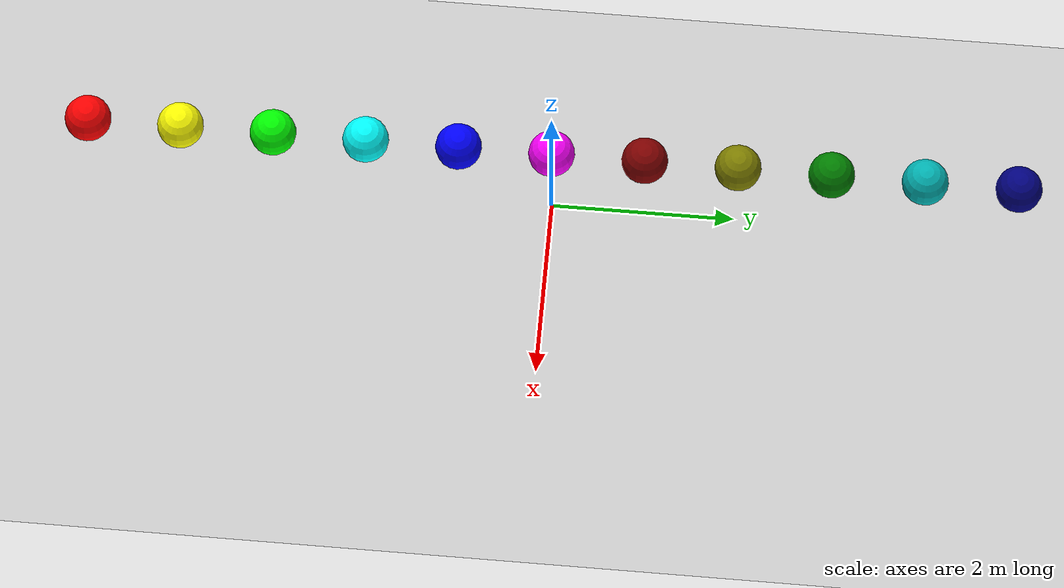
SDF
<?xml version="1.0" ?>
<!-- |    This document was autogenerated by xacro from xacro/bounce_test.xacro        | -->
<!-- |    EDITING THIS FILE BY HAND IS NOT RECOMMENDED                                 | -->
<sdf version="1.7">
  <world name="bounce_test">
    <plugin filename="gz-sim-physics-system" name="gz::sim::systems::Physics"/>
    <plugin filename="gz-sim-user-commands-system" name="gz::sim::systems::UserCommands"/>
    <plugin filename="gz-sim-scene-broadcaster-system" name="gz::sim::systems::SceneBroadcaster"/>
    <model name="ground_plane">
      <static>1</static>
      <pose>0 0 0 0 0 0</pose>
      <link name="link">
        <collision name="collision">
          <geometry>
            <plane>
              <normal>0 0 1</normal>
              <size>100 100</size>
            </plane>
          </geometry>
          <surface>
            <bounce>
              <restitution_coefficient>1</restitution_coefficient>
              <threshold>0</threshold>
            </bounce>
            <friction>
              <ode/>
            </friction>
            <contact/>
          </surface>
        </collision>
        <visual name="visual">
          <geometry>
            <plane>
              <normal>0 0 1</normal>
              <size>100 100</size>
            </plane>
          </geometry>
          <material>
            <ambient>0.8 0.8 0.8 1</ambient>
            <diffuse>0.8 0.8 0.8 1</diffuse>
            <specular>0.8 0.8 0.8 1</specular>
          </material>
        </visual>
      </link>
    </model>
    <light name="sun" type="directional">
      <cast_shadows>1</cast_shadows>
      <pose>0 0 10 0 -0 0</pose>
      <diffuse>0.8 0.8 0.8 1</diffuse>
      <specular>0.2 0.2 0.2 1</specular>
      <attenuation>
        <range>1000</range>
        <constant>0.9</constant>
        <linear>0.01</linear>
        <quadratic>0.001</quadratic>
      </attenuation>
      <direction>-0.5 0.1 -0.9</direction>
      <spot>
        <inner_angle>0</inner_angle>
        <outer_angle>0</outer_angle>
        <falloff>0</falloff>
      </spot>
    </light>
    <model name="ball_0">
      <pose>0 -5 1 0 0 0</pose>
      <link name="ball_0_link">
        <pose>0 0 0.25 0 0 0</pose>
        <inertial>
          <pose>0 0 0 0 0 0</pose>
          <mass>1</mass>
          <inertia>
            <ixx>0.041666666666666664</ixx>
            <ixy>0</ixy>
            <ixz>0</ixz>
            <iyy>0.041666666666666664</iyy>
            <iyz>0</iyz>
            <izz>0.041666666666666664</izz>
          </inertia>
        </inertial>
        <collision name="ball_0_collision">
          <pose relative_to="ball_0_link">0 0 0 0 0 0</pose>
          <geometry>
            <sphere>
              <radius>0.25</radius>
            </sphere>
          </geometry>
          <surface>
            <bounce>
              <restitution_coefficient>0</restitution_coefficient>
              <threshold>0</threshold>
            </bounce>
            <contact>
              <ode>
                <max_vel>1000</max_vel>
              </ode>
            </contact>
          </surface>
        </collision>
        <visual name="ball_0_visual">
          <pose>0 0 0 0 0 0</pose>
          <geometry>
            <sphere>
              <radius>0.25</radius>
            </sphere>
          </geometry>
          <material>
            <ambient>1 0 0 1</ambient>
            <diffuse>1 0 0 1</diffuse>
            <specular>0.1 0.1 0.1 1</specular>
          </material>
        </visual>
        <gravity>1</gravity>
      </link>
    </model>
    <model name="ball_0.1">
      <pose>0 -4 1 0 0 0</pose>
      <link name="ball_0.1_link">
        <pose>0 0 0.25 0 0 0</pose>
        <inertial>
          <pose>0 0 0 0 0 0</pose>
          <mass>1</mass>
          <inertia>
            <ixx>0.041666666666666664</ixx>
            <ixy>0</ixy>
            <ixz>0</ixz>
            <iyy>0.041666666666666664</iyy>
            <iyz>0</iyz>
            <izz>0.041666666666666664</izz>
          </inertia>
        </inertial>
        <collision name="ball_0.1_collision">
          <pose relative_to="ball_0.1_link">0 0 0 0 0 0</pose>
          <geometry>
            <sphere>
              <radius>0.25</radius>
            </sphere>
          </geometry>
          <surface>
            <bounce>
              <restitution_coefficient>0.1</restitution_coefficient>
              <threshold>0</threshold>
            </bounce>
            <contact>
              <ode>
                <max_vel>1000</max_vel>
              </ode>
            </contact>
          </surface>
        </collision>
        <visual name="ball_0.1_visual">
          <pose>0 0 0 0 0 0</pose>
          <geometry>
            <sphere>
              <radius>0.25</radius>
            </sphere>
          </geometry>
          <material>
            <ambient>1 1 0 1</ambient>
            <diffuse>1 1 0 1</diffuse>
            <specular>0.1 0.1 0.1 1</specular>
          </material>
        </visual>
        <gravity>1</gravity>
      </link>
    </model>
    <model name="ball_0.2">
      <pose>0 -3 1 0 0 0</pose>
      <link name="ball_0.2_link">
        <pose>0 0 0.25 0 0 0</pose>
        <inertial>
          <pose>0 0 0 0 0 0</pose>
          <mass>1</mass>
          <inertia>
            <ixx>0.041666666666666664</ixx>
            <ixy>0</ixy>
            <ixz>0</ixz>
            <iyy>0.041666666666666664</iyy>
            <iyz>0</iyz>
            <izz>0.041666666666666664</izz>
          </inertia>
        </inertial>
        <collision name="ball_0.2_collision">
          <pose relative_to="ball_0.2_link">0 0 0 0 0 0</pose>
          <geometry>
            <sphere>
              <radius>0.25</radius>
            </sphere>
          </geometry>
          <surface>
            <bounce>
              <restitution_coefficient>0.2</restitution_coefficient>
              <threshold>0</threshold>
            </bounce>
            <contact>
              <ode>
                <max_vel>1000</max_vel>
              </ode>
            </contact>
          </surface>
        </collision>
        <visual name="ball_0.2_visual">
          <pose>0 0 0 0 0 0</pose>
          <geometry>
            <sphere>
              <radius>0.25</radius>
            </sphere>
          </geometry>
          <material>
            <ambient>0 1 0 1</ambient>
            <diffuse>0 1 0 1</diffuse>
            <specular>0.1 0.1 0.1 1</specular>
          </material>
        </visual>
        <gravity>1</gravity>
      </link>
    </model>
    <model name="ball_0.3">
      <pose>0 -2 1 0 0 0</pose>
      <link name="ball_0.3_link">
        <pose>0 0 0.25 0 0 0</pose>
        <inertial>
          <pose>0 0 0 0 0 0</pose>
          <mass>1</mass>
          <inertia>
            <ixx>0.041666666666666664</ixx>
            <ixy>0</ixy>
            <ixz>0</ixz>
            <iyy>0.041666666666666664</iyy>
            <iyz>0</iyz>
            <izz>0.041666666666666664</izz>
          </inertia>
        </inertial>
        <collision name="ball_0.3_collision">
          <pose relative_to="ball_0.3_link">0 0 0 0 0 0</pose>
          <geometry>
            <sphere>
              <radius>0.25</radius>
            </sphere>
          </geometry>
          <surface>
            <bounce>
              <restitution_coefficient>0.3</restitution_coefficient>
              <threshold>0</threshold>
            </bounce>
            <contact>
              <ode>
                <max_vel>1000</max_vel>
              </ode>
            </contact>
          </surface>
        </collision>
        <visual name="ball_0.3_visual">
          <pose>0 0 0 0 0 0</pose>
          <geometry>
            <sphere>
              <radius>0.25</radius>
            </sphere>
          </geometry>
          <material>
            <ambient>0 1 1 1</ambient>
            <diffuse>0 1 1 1</diffuse>
            <specular>0.1 0.1 0.1 1</specular>
          </material>
        </visual>
        <gravity>1</gravity>
      </link>
    </model>
    <model name="ball_0.4">
      <pose>0 -1 1 0 0 0</pose>
      <link name="ball_0.4_link">
        <pose>0 0 0.25 0 0 0</pose>
        <inertial>
          <pose>0 0 0 0 0 0</pose>
          <mass>1</mass>
          <inertia>
            <ixx>0.041666666666666664</ixx>
            <ixy>0</ixy>
            <ixz>0</ixz>
            <iyy>0.041666666666666664</iyy>
            <iyz>0</iyz>
            <izz>0.041666666666666664</izz>
          </inertia>
        </inertial>
        <collision name="ball_0.4_collision">
          <pose relative_to="ball_0.4_link">0 0 0 0 0 0</pose>
          <geometry>
            <sphere>
              <radius>0.25</radius>
            </sphere>
          </geometry>
          <surface>
            <bounce>
              <restitution_coefficient>0.4</restitution_coefficient>
              <threshold>0</threshold>
            </bounce>
            <contact>
              <ode>
                <max_vel>1000</max_vel>
              </ode>
            </contact>
          </surface>
        </collision>
        <visual name="ball_0.4_visual">
          <pose>0 0 0 0 0 0</pose>
          <geometry>
            <sphere>
              <radius>0.25</radius>
            </sphere>
          </geometry>
          <material>
            <ambient>0 0 1 1</ambient>
            <diffuse>0 0 1 1</diffuse>
            <specular>0.1 0.1 0.1 1</specular>
          </material>
        </visual>
        <gravity>1</gravity>
      </link>
    </model>
    <model name="ball_0.5">
      <pose>0 0 1 0 0 0</pose>
      <link name="ball_0.5_link">
        <pose>0 0 0.25 0 0 0</pose>
        <inertial>
          <pose>0 0 0 0 0 0</pose>
          <mass>1</mass>
          <inertia>
            <ixx>0.041666666666666664</ixx>
            <ixy>0</ixy>
            <ixz>0</ixz>
            <iyy>0.041666666666666664</iyy>
            <iyz>0</iyz>
            <izz>0.041666666666666664</izz>
          </inertia>
        </inertial>
        <collision name="ball_0.5_collision">
          <pose relative_to="ball_0.5_link">0 0 0 0 0 0</pose>
          <geometry>
            <sphere>
              <radius>0.25</radius>
            </sphere>
          </geometry>
          <surface>
            <bounce>
              <restitution_coefficient>0.5</restitution_coefficient>
              <threshold>0</threshold>
            </bounce>
            <contact>
              <ode>
                <max_vel>1000</max_vel>
              </ode>
            </contact>
          </surface>
        </collision>
        <visual name="ball_0.5_visual">
          <pose>0 0 0 0 0 0</pose>
          <geometry>
            <sphere>
              <radius>0.25</radius>
            </sphere>
          </geometry>
          <material>
            <ambient>1 0 1 1</ambient>
            <diffuse>1 0 1 1</diffuse>
            <specular>0.1 0.1 0.1 1</specular>
          </material>
        </visual>
        <gravity>1</gravity>
      </link>
    </model>
    <model name="ball_0.6">
      <pose>0 1 1 0 0 0</pose>
      <link name="ball_0.6_link">
        <pose>0 0 0.25 0 0 0</pose>
        <inertial>
          <pose>0 0 0 0 0 0</pose>
          <mass>1</mass>
          <inertia>
            <ixx>0.041666666666666664</ixx>
            <ixy>0</ixy>
            <ixz>0</ixz>
            <iyy>0.041666666666666664</iyy>
            <iyz>0</iyz>
            <izz>0.041666666666666664</izz>
          </inertia>
        </inertial>
        <collision name="ball_0.6_collision">
          <pose relative_to="ball_0.6_link">0 0 0 0 0 0</pose>
          <geometry>
            <sphere>
              <radius>0.25</radius>
            </sphere>
          </geometry>
          <surface>
            <bounce>
              <restitution_coefficient>0.6</restitution_coefficient>
              <threshold>0</threshold>
            </bounce>
            <contact>
              <ode>
                <max_vel>1000</max_vel>
              </ode>
            </contact>
          </surface>
        </collision>
        <visual name="ball_0.6_visual">
          <pose>0 0 0 0 0 0</pose>
          <geometry>
            <sphere>
              <radius>0.25</radius>
            </sphere>
          </geometry>
          <material>
            <ambient>0.5 0 0 1</ambient>
            <diffuse>0.5 0 0 1</diffuse>
            <specular>0.1 0.1 0.1 1</specular>
          </material>
        </visual>
        <gravity>1</gravity>
      </link>
    </model>
    <model name="ball_0.7">
      <pose>0 2 1 0 0 0</pose>
      <link name="ball_0.7_link">
        <pose>0 0 0.25 0 0 0</pose>
        <inertial>
          <pose>0 0 0 0 0 0</pose>
          <mass>1</mass>
          <inertia>
            <ixx>0.041666666666666664</ixx>
            <ixy>0</ixy>
            <ixz>0</ixz>
            <iyy>0.041666666666666664</iyy>
            <iyz>0</iyz>
            <izz>0.041666666666666664</izz>
          </inertia>
        </inertial>
        <collision name="ball_0.7_collision">
          <pose relative_to="ball_0.7_link">0 0 0 0 0 0</pose>
          <geometry>
            <sphere>
              <radius>0.25</radius>
            </sphere>
          </geometry>
          <surface>
            <bounce>
              <restitution_coefficient>0.7</restitution_coefficient>
              <threshold>0</threshold>
            </bounce>
            <contact>
              <ode>
                <max_vel>1000</max_vel>
              </ode>
            </contact>
          </surface>
        </collision>
        <visual name="ball_0.7_visual">
          <pose>0 0 0 0 0 0</pose>
          <geometry>
            <sphere>
              <radius>0.25</radius>
            </sphere>
          </geometry>
          <material>
            <ambient>0.5 0.5 0 1</ambient>
            <diffuse>0.5 0.5 0 1</diffuse>
            <specular>0.1 0.1 0.1 1</specular>
          </material>
        </visual>
        <gravity>1</gravity>
      </link>
    </model>
    <model name="ball_0.8">
      <pose>0 3 1 0 0 0</pose>
      <link name="ball_0.8_link">
        <pose>0 0 0.25 0 0 0</pose>
        <inertial>
          <pose>0 0 0 0 0 0</pose>
          <mass>1</mass>
          <inertia>
            <ixx>0.041666666666666664</ixx>
            <ixy>0</ixy>
            <ixz>0</ixz>
            <iyy>0.041666666666666664</iyy>
            <iyz>0</iyz>
            <izz>0.041666666666666664</izz>
          </inertia>
        </inertial>
        <collision name="ball_0.8_collision">
          <pose relative_to="ball_0.8_link">0 0 0 0 0 0</pose>
          <geometry>
            <sphere>
              <radius>0.25</radius>
            </sphere>
          </geometry>
          <surface>
            <bounce>
              <restitution_coefficient>0.8</restitution_coefficient>
              <threshold>0</threshold>
            </bounce>
            <contact>
              <ode>
                <max_vel>1000</max_vel>
              </ode>
            </contact>
          </surface>
        </collision>
        <visual name="ball_0.8_visual">
          <pose>0 0 0 0 0 0</pose>
          <geometry>
            <sphere>
              <radius>0.25</radius>
            </sphere>
          </geometry>
          <material>
            <ambient>0 0.5 0 1</ambient>
            <diffuse>0 0.5 0 1</diffuse>
            <specular>0.1 0.1 0.1 1</specular>
          </material>
        </visual>
        <gravity>1</gravity>
      </link>
    </model>
    <model name="ball_0.9">
      <pose>0 4 1 0 0 0</pose>
      <link name="ball_0.9_link">
        <pose>0 0 0.25 0 0 0</pose>
        <inertial>
          <pose>0 0 0 0 0 0</pose>
          <mass>1</mass>
          <inertia>
            <ixx>0.041666666666666664</ixx>
            <ixy>0</ixy>
            <ixz>0</ixz>
            <iyy>0.041666666666666664</iyy>
            <iyz>0</iyz>
            <izz>0.041666666666666664</izz>
          </inertia>
        </inertial>
        <collision name="ball_0.9_collision">
          <pose relative_to="ball_0.9_link">0 0 0 0 0 0</pose>
          <geometry>
            <sphere>
              <radius>0.25</radius>
            </sphere>
          </geometry>
          <surface>
            <bounce>
              <restitution_coefficient>0.9</restitution_coefficient>
              <threshold>0</threshold>
            </bounce>
            <contact>
              <ode>
                <max_vel>1000</max_vel>
              </ode>
            </contact>
          </surface>
        </collision>
        <visual name="ball_0.9_visual">
          <pose>0 0 0 0 0 0</pose>
          <geometry>
            <sphere>
              <radius>0.25</radius>
            </sphere>
          </geometry>
          <material>
            <ambient>0 0.7 0.7 1</ambient>
            <diffuse>0 0.7 0.7 1</diffuse>
            <specular>0.1 0.1 0.1 1</specular>
          </material>
        </visual>
        <gravity>1</gravity>
      </link>
    </model>
    <model name="ball_1">
      <pose>0 5 1 0 0 0</pose>
      <link name="ball_1_link">
        <pose>0 0 0.25 0 0 0</pose>
        <inertial>
          <pose>0 0 0 0 0 0</pose>
          <mass>1</mass>
          <inertia>
            <ixx>0.041666666666666664</ixx>
            <ixy>0</ixy>
            <ixz>0</ixz>
            <iyy>0.041666666666666664</iyy>
            <iyz>0</iyz>
            <izz>0.041666666666666664</izz>
          </inertia>
        </inertial>
        <collision name="ball_1_collision">
          <pose relative_to="ball_1_link">0 0 0 0 0 0</pose>
          <geometry>
            <sphere>
              <radius>0.25</radius>
            </sphere>
          </geometry>
          <surface>
            <bounce>
              <restitution_coefficient>1</restitution_coefficient>
              <threshold>0</threshold>
            </bounce>
            <contact>
              <ode>
                <max_vel>1000</max_vel>
              </ode>
            </contact>
          </surface>
        </collision>
        <visual name="ball_1_visual">
          <pose>0 0 0 0 0 0</pose>
          <geometry>
            <sphere>
              <radius>0.25</radius>
            </sphere>
          </geometry>
          <material>
            <ambient>0 0 0.5 1</ambient>
            <diffuse>0 0 0.5 1</diffuse>
            <specular>0.1 0.1 0.1 1</specular>
          </material>
        </visual>
        <gravity>1</gravity>
      </link>
    </model>
  </world>
</sdf>
